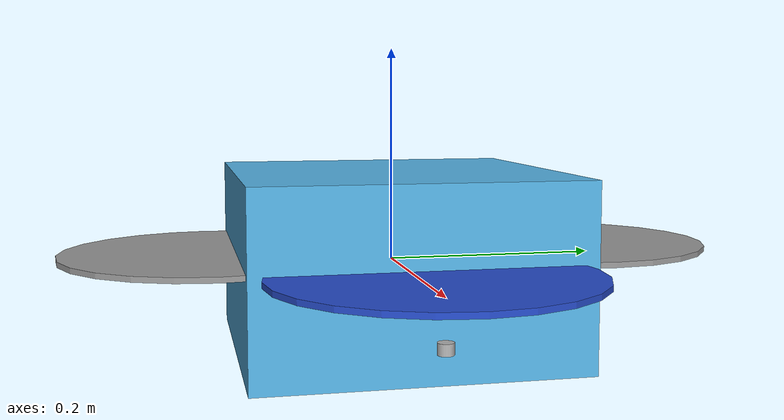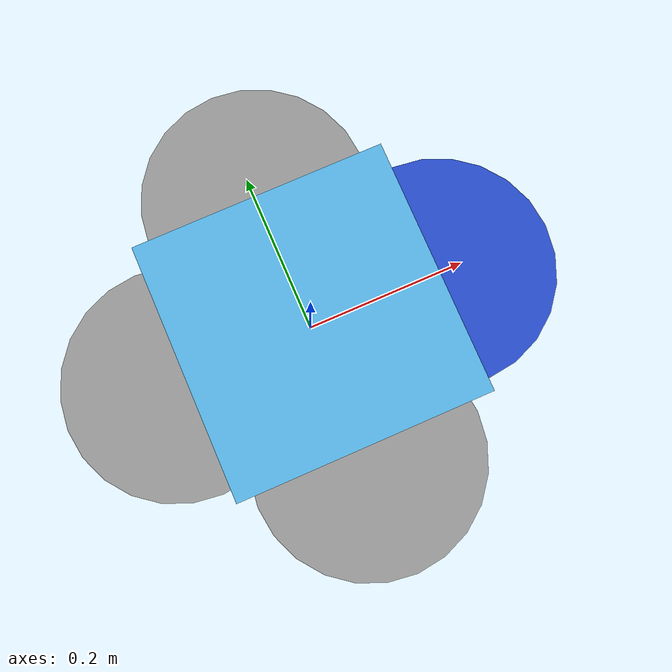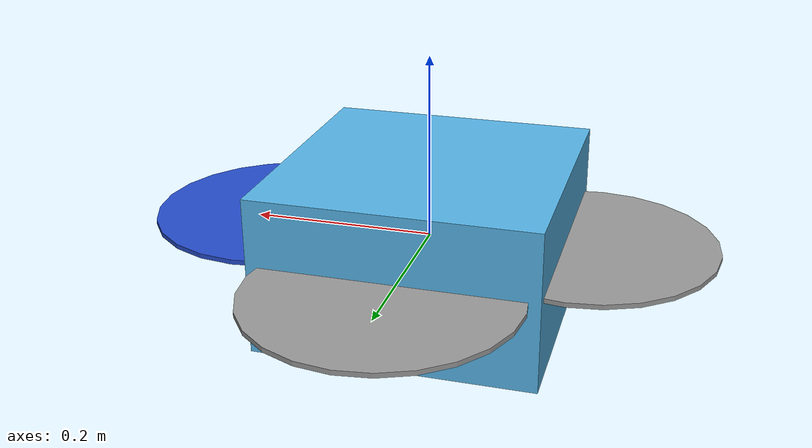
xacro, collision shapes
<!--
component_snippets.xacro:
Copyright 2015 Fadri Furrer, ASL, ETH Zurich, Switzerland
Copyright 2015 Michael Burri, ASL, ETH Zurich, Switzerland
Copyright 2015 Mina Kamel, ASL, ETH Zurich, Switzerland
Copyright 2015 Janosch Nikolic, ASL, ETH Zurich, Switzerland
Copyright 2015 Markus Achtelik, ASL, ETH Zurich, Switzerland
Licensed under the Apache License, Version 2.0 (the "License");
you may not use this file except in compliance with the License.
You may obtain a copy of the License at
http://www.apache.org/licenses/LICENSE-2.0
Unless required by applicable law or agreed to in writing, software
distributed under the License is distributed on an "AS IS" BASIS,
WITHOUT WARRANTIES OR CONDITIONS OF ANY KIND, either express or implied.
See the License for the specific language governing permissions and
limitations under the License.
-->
<?xml version="1.0"?>

<robot name="quad" xmlns:xacro="http://ros.org/wiki/xacro">
  <xacro:include filename="$(find acl_sim)/urdf/component_snippets.xacro" />

  <!-- Instantiate frame "mechanics" -->
  <xacro:include filename="$(find acl_sim)/urdf/kit_c.xacro" />

  <!-- Instantiate a controller. -->
  <xacro:controller_plugin_macro
    namespace="${namespace}"
    imu_sub_topic="imu"
    >
  </xacro:controller_plugin_macro>

  <!-- Mount an ADIS16448 IMU. -->
  <xacro:imu_plugin_macro
    namespace="${namespace}"
    imu_suffix=""
    parent_link="base_link"
    imu_topic="imu"
    mass_imu_sensor="0.015"
    gyroscope_noise_density="0.0003394"
    gyroscopoe_random_walk="0.000038785"
    gyroscope_bias_correlation_time="1000.0"
    gyroscope_turn_on_bias_sigma="0.0087"
    accelerometer_noise_density="0.004"
    accelerometer_random_walk="0.006"
    accelerometer_bias_correlation_time="300.0"
    accelerometer_turn_on_bias_sigma="0.1960"
  >
    <inertia ixx="0.00001" ixy="0.0" ixz="0.0" iyy="0.00001" iyz="0.0" izz="0.00001" />
    <origin xyz="0 0 0" rpy="0 0 0" />
  </xacro:imu_plugin_macro>

<!--Mount a basic camera -->
  <xacro:if value="false">
    <xacro:camera_macro
      namespace="${namespace}"
      parent_link="base_link"
      camera_suffix=""
      frame_rate="30"
      horizontal_fov="2"
      image_width="1280"
      image_height="720"
      image_format="R8G8B8"
      min_distance="0.02"
      max_distance="300"
      noise_mean="0.0"
      noise_stddev="0.007"
      enable_visual="true"
    >
      <box size="0.2 0.2 0.2" />
      <origin xyz="0.035 -0.035 0.028" rpy="0 0 0" />
    </xacro:camera_macro>
  </xacro:if>

<!--Mount a VI sensor (Kinect) -->
  <xacro:if value="true">
    <xacro:vi_sensor_depth_macro
      namespace="${namespace}"
      parent_link="base_link"
      camera_suffix=""
      frame_rate="30"
    >
      <origin xyz="0.2 0.0 -0.04" rpy="0 0 0" />
    </xacro:vi_sensor_depth_macro>
  </xacro:if>

  <xacro:if value="true">
    <!-- Mount an IMU providing ground truth. -->
    <xacro:imu_plugin_macro
      namespace="${namespace}"
      imu_suffix="gt"
      parent_link="base_link"
      imu_topic="ground_truth/imu"
      mass_imu_sensor="0.00001"
      gyroscope_noise_density="0.0"
      gyroscopoe_random_walk="0.0"
      gyroscope_bias_correlation_time="1000.0"
      gyroscope_turn_on_bias_sigma="0.0"
      accelerometer_noise_density="0.0"
      accelerometer_random_walk="0.0"
      accelerometer_bias_correlation_time="300.0"
      accelerometer_turn_on_bias_sigma="0.0"
    >
      <inertia ixx="0.00001" ixy="0.0" ixz="0.0" iyy="0.00001" iyz="0.0" izz="0.00001" />
      <origin xyz="0 0 0" rpy="0 0 0" />
    </xacro:imu_plugin_macro>

    <!-- Mount a generic odometry sensor providing ground truth. -->
    <xacro:odometry_plugin_macro
      namespace="${namespace}/ground_truth"
      odometry_sensor_suffix="gt"
      parent_link="base_link"
      pose_topic="pose"
      pose_with_covariance_topic="pose_with_covariance"
      position_topic="position"
      transform_topic="transform"
      odometry_topic="odometry"
      parent_frame_id="world"
      mass_odometry_sensor="0.00001"
      measurement_divisor="1"
      measurement_delay="0"
      unknown_delay="0.0"
      noise_normal_position="0 0 0"
      noise_normal_quaternion="0 0 0"
      noise_normal_linear_velocity="0 0 0"
      noise_normal_angular_velocity="0 0 0"
      noise_uniform_position="0 0 0"
      noise_uniform_quaternion="0 0 0"
      noise_uniform_linear_velocity="0 0 0"
      noise_uniform_angular_velocity="0 0 0"
      enable_odometry_map="false"
      odometry_map=""
      image_scale=""
    >
      <inertia ixx="0.00001" ixy="0.0" ixz="0.0" iyy="0.00001" iyz="0.0" izz="0.00001" /> <!-- [kg.m^2] [kg.m^2] [kg.m^2] [kg.m^2] [kg.m^2] [kg.m^2] -->
      <origin xyz="0.0 0.0 0.0" rpy="0.0 0.0 0.0" />
    </xacro:odometry_plugin_macro>
  </xacro:if>

</robot>

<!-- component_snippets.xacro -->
<robot xmlns:xacro="http://ros.org/wiki/xacro">
<xacro:property name="PI" value="3.1415926535897931" />

  <!-- Macro to add logging to a bag file. -->
  <xacro:macro name="bag_plugin_macro"
    params="namespace bag_file rotor_velocity_slowdown_sim">
    <gazebo>
      <plugin filename="librotors_gazebo_bag_plugin.so" name="rosbag">
        <robotNamespace>${namespace}</robotNamespace>
        <bagFileName>${bag_file}</bagFileName>
        <linkName>base_link</linkName>
        <frameId>base_link</frameId>
        <commandAttitudeThrustSubTopic>command/attitude</commandAttitudeThrustSubTopic>
        <commandAttitudeThrustPubTopic>command/attitude</commandAttitudeThrustPubTopic>
        <rotorVelocitySlowdownSim>${rotor_velocity_slowdown_sim}</rotorVelocitySlowdownSim>
      </plugin>
    </gazebo>
  </xacro:macro>

  <!-- Macro to add a camera. -->
  <xacro:macro name="camera_macro"
    params="namespace parent_link camera_suffix frame_rate
      horizontal_fov image_width image_height image_format min_distance
      max_distance noise_mean noise_stddev enable_visual *geometry *origin">
    <link name="${namespace}/camera_${camera_suffix}_link">
      <collision>
        <origin xyz="0 0 0" rpy="0 0 0" />
        <geometry>
          <xacro:insert_block name="geometry" />
        </geometry>
      </collision>
      <xacro:if value="${enable_visual}">
        <visual>
          <origin xyz="0 0 0" rpy="0 0 0" />
          <geometry>
            <mesh filename="package://acl_sim/meshes/wilSelby/thermaleye_camera_hector_v2.dae" scale=".5 .5 .5"/>
          </geometry>
        </visual>
      </xacro:if>
      <inertial>
        <mass value="1e-5" />
        <origin xyz="0 0 0" rpy="0 0 0" />
        <inertia ixx="1e-6" ixy="0" ixz="0" iyy="1e-6" iyz="0" izz="1e-6" />
      </inertial>
    </link>
    <joint name="${namespace}/camera_${camera_suffix}_joint" type="fixed">
      <xacro:insert_block name="origin" />
      <parent link="${parent_link}" />
      <child link="${namespace}/camera_${camera_suffix}_link" />
    </joint>
    <gazebo reference="${namespace}/camera_${camera_suffix}_link">
      <sensor type="camera" name="${namespace}_camera_${camera_suffix}">
        <update_rate>${frame_rate}</update_rate>
        <camera name="head">
          <horizontal_fov>${horizontal_fov}</horizontal_fov>
          <image>
            <width>${image_width}</width>
            <height>${image_height}</height>
            <format>${image_format}</format>
          </image>
          <clip>
            <near>${min_distance}</near>
            <far>${max_distance}</far>
          </clip>
          <noise>
            <type>gaussian</type>
            <!-- Noise is sampled independently per pixel on each frame.
                 That pixel's noise value is added to each of its color
                 channels, which at that point lie in the range [0,1]. -->
            <mean>${noise_mean}</mean>
            <stddev>${noise_stddev}</stddev>
          </noise>
        </camera>
        <plugin name="${namespace}_camera_${camera_suffix}_controller" filename="libgazebo_ros_camera.so">
          <robotNamespace>${namespace}</robotNamespace>
          <alwaysOn>true</alwaysOn>
          <updateRate>${frame_rate}</updateRate>
          <cameraName>camera_${camera_suffix}</cameraName>
          <imageTopicName>image_raw</imageTopicName>
          <cameraInfoTopicName>camera_info</cameraInfoTopicName>
          <frameName>camera_${camera_suffix}_link</frameName>
          <hackBaseline>0.0</hackBaseline>
          <distortionK1>0.0</distortionK1>
          <distortionK2>0.0</distortionK2>
          <distortionK3>0.0</distortionK3>
          <distortionT1>0.0</distortionT1>
          <distortionT2>0.0</distortionT2>
        </plugin>
      </sensor>
    </gazebo>
  </xacro:macro>

  <!-- Macro to add the controller interface. -->
  <xacro:macro name="controller_plugin_macro" params="namespace imu_sub_topic">
    <gazebo>
      <plugin name="controller_interface" filename="librotors_gazebo_controller_interface.so">
        <robotNamespace>${namespace}</robotNamespace>
        <commandAttitudeThrustSubTopic>command/attitude</commandAttitudeThrustSubTopic>
        <commandRateThrustSubTopic>command/rate</commandRateThrustSubTopic>
        <commandMotorSpeedSubTopic>command/motor_speed</commandMotorSpeedSubTopic>
        <imuSubTopic>${imu_sub_topic}</imuSubTopic>
        <motorSpeedCommandPubTopic>gazebo/command/motor_speed</motorSpeedCommandPubTopic>
      </plugin>
    </gazebo>
  </xacro:macro>

  <!-- Macro to add an IMU. -->
  <xacro:macro name="imu_plugin_macro"
    params="namespace imu_suffix parent_link imu_topic
      mass_imu_sensor gyroscope_noise_density gyroscopoe_random_walk
      gyroscope_bias_correlation_time gyroscope_turn_on_bias_sigma
      accelerometer_noise_density accelerometer_random_walk
      accelerometer_bias_correlation_time accelerometer_turn_on_bias_sigma
      *inertia *origin">
    <!-- IMU link -->
    <link name="${namespace}/imu${imu_suffix}_link">
      <inertial>
        <xacro:insert_block name="inertia" />
        <mass value="${mass_imu_sensor}" />  <!-- [kg] -->
        <origin xyz="0 0 0" rpy="0 0 0" />
      </inertial>
    </link>
    <!-- IMU joint -->
    <joint name="${namespace}/imu${imu_suffix}_joint" type="revolute">
      <xacro:insert_block name="origin" />
      <parent link="${parent_link}" />
      <child link="${namespace}/imu${imu_suffix}_link" />
      <limit upper="0" lower="0" effort="0" velocity="0" />
    </joint>
    <gazebo>
      <plugin filename="librotors_gazebo_imu_plugin.so" name="rotors_gazebo_imu${imu_suffix}_plugin">
      <!-- A good description of the IMU parameters can be found in the kalibr documentation:
           https://github.com/ethz-asl/kalibr/wiki/IMU-Noise-Model-and-Intrinsics -->
        <robotNamespace>${namespace}</robotNamespace> <!-- (string, required): ros namespace in which the messages are published -->
        <linkName>${namespace}/imu${imu_suffix}_link</linkName> <!-- (string, required): name of the body which holds the IMU sensor -->
        <imuTopic>${imu_topic}</imuTopic> <!-- (string): name of the sensor output topic and prefix of service names (defaults to imu) -->
        <gyroscopeNoiseDensity>${gyroscope_noise_density}</gyroscopeNoiseDensity> <!-- Gyroscope noise density (two-sided spectrum) [rad/s/sqrt(Hz)] -->
        <gyroscopeRandomWalk>${gyroscopoe_random_walk}</gyroscopeRandomWalk> <!-- Gyroscope bias random walk [rad/s/s/sqrt(Hz)] -->
        <gyroscopeBiasCorrelationTime>${gyroscope_bias_correlation_time}</gyroscopeBiasCorrelationTime> <!-- Gyroscope bias correlation time constant [s] -->
        <gyroscopeTurnOnBiasSigma>${gyroscope_turn_on_bias_sigma}</gyroscopeTurnOnBiasSigma> <!-- Gyroscope turn on bias standard deviation [rad/s] -->
        <accelerometerNoiseDensity>${accelerometer_noise_density}</accelerometerNoiseDensity> <!-- Accelerometer noise density (two-sided spectrum) [m/s^2/sqrt(Hz)] -->
        <accelerometerRandomWalk>${accelerometer_random_walk}</accelerometerRandomWalk> <!-- Accelerometer bias random walk. [m/s^2/s/sqrt(Hz)] -->
        <accelerometerBiasCorrelationTime>${accelerometer_bias_correlation_time}</accelerometerBiasCorrelationTime> <!-- Accelerometer bias correlation time constant [s] -->
        <accelerometerTurnOnBiasSigma>${accelerometer_turn_on_bias_sigma}</accelerometerTurnOnBiasSigma> <!-- Accelerometer turn on bias standard deviation [m/s^2] -->
      </plugin>
    </gazebo>
  </xacro:macro>

<!-- Macro to add a generic odometry sensor. -->
  <xacro:macro name="odometry_plugin_macro"
    params="
      namespace odometry_sensor_suffix parent_link pose_topic pose_with_covariance_topic
      position_topic transform_topic odometry_topic parent_frame_id
      mass_odometry_sensor measurement_divisor measurement_delay unknown_delay
      noise_normal_position noise_normal_quaternion noise_normal_linear_velocity
      noise_normal_angular_velocity noise_uniform_position
      noise_uniform_quaternion noise_uniform_linear_velocity
      noise_uniform_angular_velocity enable_odometry_map odometry_map
      image_scale *inertia *origin">
    <!-- odometry link -->
    <link name="${namespace}/odometry_sensor${odometry_sensor_suffix}_link">
      <inertial>
        <xacro:insert_block name="inertia" />
        <mass value="${mass_odometry_sensor}" />  <!-- [kg] -->
      </inertial>
    </link>
    <!-- odometry joint -->
    <joint name="${namespace}/odometry_sensor${odometry_sensor_suffix}_joint" type="revolute">
      <parent link="${parent_link}" />
      <xacro:insert_block name="origin" />
      <child link="${namespace}/odometry_sensor${odometry_sensor_suffix}_link" />
      <limit upper="0" lower="0" effort="0" velocity="0" />
    </joint>
    <gazebo>
      <plugin filename="librotors_gazebo_odometry_plugin.so" name="odometry_sensor${odometry_sensor_suffix}">
        <linkName>base_link</linkName>  <!--{namespace}/odometry_sensor${odometry_sensor_suffix}_link"-->
        <robotNamespace>${namespace}</robotNamespace>
        <poseTopic>${pose_topic}</poseTopic>
        <poseWithCovarianceTopic>${pose_with_covariance_topic}</poseWithCovarianceTopic>
        <positionTopic>${position_topic}</positionTopic>
        <transformTopic>${transform_topic}</transformTopic>
        <odometryTopic>${odometry_topic}</odometryTopic>
        <parentFrameId>${parent_frame_id}</parentFrameId>  <!-- Use the scoped link name here. e.g. Model::link. -->
        <measurementDivisor>${measurement_divisor}</measurementDivisor> <!-- only every (seq % measurementDivisor) == 0 measurement is published [int] -->
        <measurementDelay>${measurement_delay}</measurementDelay> <!-- time that measurement gets held back before it's published in [simulation cycles (int)] -->
        <unknownDelay>${unknown_delay}</unknownDelay> <!-- additional delay, that just gets added to the timestamp [s] -->
        <noiseNormalPosition>${noise_normal_position}</noiseNormalPosition> <!-- standard deviation of additive white gaussian noise [m] -->
        <noiseNormalQuaternion>${noise_normal_quaternion}</noiseNormalQuaternion> <!-- standard deviation white gaussian noise [rad]: q_m = q*quaternionFromSmallAngleApproximation(noiseNormalQ) -->
        <noiseNormalLinearVelocity>${noise_normal_linear_velocity}</noiseNormalLinearVelocity> <!-- standard deviation of additive white gaussian noise [m/s] -->
        <noiseNormalAngularVelocity>${noise_normal_angular_velocity}</noiseNormalAngularVelocity> <!-- standard deviation of additive white gaussian noise [rad/s] -->
        <noiseUniformPosition>${noise_uniform_position}</noiseUniformPosition> <!-- symmetric bounds of uniform noise [m] -->
        <noiseUniformQuaternion>${noise_uniform_quaternion}</noiseUniformQuaternion> <!-- symmetric bounds of uniform noise [rad], computation see above -->
        <noiseUniformLinearVelocity>${noise_uniform_linear_velocity}</noiseUniformLinearVelocity>  <!-- symmetric bounds of uniform noise [m/s] -->
        <noiseUniformAngularVelocity>${noise_uniform_angular_velocity}</noiseUniformAngularVelocity>  <!-- symmetric bounds of uniform noise [rad/s] -->
        <xacro:if value="${enable_odometry_map}">
          <covarianceImage>package://rotors_gazebo/resource/${odometry_map}</covarianceImage>
          <covarianceImageScale>${image_scale}</covarianceImageScale>
        </xacro:if>
      </plugin>
    </gazebo>
  </xacro:macro>

  <!-- Macro to add the wind plugin. -->
  <xacro:macro name="wind_plugin_macro"
    params="namespace xyz_offset wind_direction wind_force_mean
      wind_gust_direction wind_gust_duration wind_gust_start
      wind_gust_force_mean">
    <gazebo>
      <plugin filename="librotors_gazebo_wind_plugin.so" name="wind_plugin">
        <frameId>base_link</frameId>
        <linkName>base_link</linkName>
        <robotNamespace>${namespace}</robotNamespace>
        <xyzOffset>${xyz_offset}</xyzOffset>
        <windDirection>${wind_direction}</windDirection>
        <windForceMean>${wind_force_mean}</windForceMean>
        <windGustDirection>${wind_gust_direction}</windGustDirection>
        <windGustDuration>${wind_gust_duration}</windGustDuration>
        <windGustStart>${wind_gust_start}</windGustStart>
        <windGustForceMean>${wind_gust_force_mean}</windGustForceMean>
      </plugin>
    </gazebo>
  </xacro:macro>

  <!-- VI sensor macros -->
  <!-- Macro to add a VI-sensor camera. -->
  <xacro:macro name="vi_sensor_camera_macro"
    params="namespace parent_link camera_suffix frame_rate *origin">
    <xacro:camera_macro
      namespace="${namespace}"
      parent_link="${parent_link}"
      camera_suffix="${camera_suffix}"
      frame_rate="${frame_rate}"
      horizontal_fov="1.3962634"
      image_width="752"
      image_height="480"
      image_format="L8"
      min_distance="0.02"
      max_distance="30"
      noise_mean="0.0"
      noise_stddev="0.007"
      enable_visual="false">
      <cylinder length="0.01" radius="0.007" />
      <xacro:insert_block name="origin" />
    </xacro:camera_macro>
  </xacro:macro>

  <!-- Macro to add a depth camera on the VI-sensor. -->
  <xacro:macro name="vi_sensor_depth_macro"
    params="namespace parent_link camera_suffix frame_rate *origin">
    <link name="${namespace}/camera_${camera_suffix}_link">
      <visual>
        <origin xyz="0 0 0" rpy="0 0 0" />
        <geometry>
          <mesh filename="package://acl_sim/meshes/wilSelby/kinect_camera_simple.dae"/>
        </geometry>
      </visual>
      <collision>
        <origin xyz="0 0 0" rpy="0 0 0" />
        <geometry>
          <cylinder length="0.01" radius="0.007" />
          <mesh filename="package://acl_sim/meshes/wilSelby/kinect_camera_simple.stl"/>
        </geometry>
      </collision>
      <inertial>
        <mass value="1e-5" />
        <origin xyz="0 0 0" rpy="0 0 0" />
        <inertia ixx="1e-6" ixy="0" ixz="0" iyy="1e-6" iyz="0" izz="1e-6" />
      </inertial>
    </link>
    <joint name="${namespace}/camera_${camera_suffix}_joint" type="fixed">
      <xacro:insert_block name="origin" />
      <parent link="${parent_link}" />
      <child link="${namespace}/camera_${camera_suffix}_link" />
      <limit upper="0" lower="0" effort="0" velocity="0" />
    </joint>
    <!-- Optical center of camera -->
    <link name="${namespace}/camera_${camera_suffix}_optical_center_link" />
    <joint name="${namespace}/camera_${camera_suffix}_optical_center_joint" type="fixed">
      <origin xyz="0 0 0" rpy="${-PI/2} 0 ${-PI/2}" />
      <parent link="${namespace}/camera_${camera_suffix}_link" />
      <child link="${namespace}/camera_${camera_suffix}_optical_center_link" />
      <limit upper="0" lower="0" effort="0" velocity="0" />
    </joint>
    <gazebo reference="${namespace}/camera_${camera_suffix}_link">
      <sensor type="depth" name="${namespace}_camera_{camera_suffix}">
        <always_on>true</always_on>
        <update_rate>${frame_rate}</update_rate>
        <camera>
          <horizontal_fov>2</horizontal_fov>
          <image>
            <format>R8G8B8</format>
            <width>640</width>
            <height>480</height>
          </image>
          <clip>
            <near>0.01</near>
            <far>100</far>
          </clip>
        </camera>
        <plugin name="${namespace}_camera_{camera_suffix}" filename="libgazebo_ros_openni_kinect.so">
          <robotNamespace>${namespace}</robotNamespace>
          <alwaysOn>true</alwaysOn>
          <baseline>0.11</baseline>
          <updateRate>${frame_rate}</updateRate>
          <cameraName>camera_${camera_suffix}</cameraName>
          <imageTopicName>camera/image_raw</imageTopicName>
          <cameraInfoTopicName>camera/camera_info</cameraInfoTopicName>
          <depthImageTopicName>depth/disparity</depthImageTopicName>
          <depthImageCameraInfoTopicName>depth/camera_info</depthImageCameraInfoTopicName>
          <pointCloudTopicName>depth/points</pointCloudTopicName>
          <frameName>camera_${camera_suffix}_optical_center_link</frameName>
          <pointCloudCutoff>0.5</pointCloudCutoff>
          <distortionK1>0.0</distortionK1>
          <distortionK2>0.0</distortionK2>
          <distortionK3>0.0</distortionK3>
          <distortionT1>0.0</distortionT1>
          <distortionT2>0.0</distortionT2>
        </plugin>
      </sensor>
    </gazebo>
  </xacro:macro>

  <!-- VI-Sensor Macro -->
  <xacro:macro name="vi_sensor_macro" params="namespace parent_link *origin">
    <!-- Vi Sensor Link -->
    <link name="${namespace}/vi_sensor_link">
      <collision>
        <origin xyz="0 0 0" rpy="0 0 0" />
        <geometry>
          <box size="0.03 0.133 0.057" />
        </geometry>
      </collision>

      <visual>
        <origin xyz="0 0 0" rpy="0 0 0" />
        <geometry>
          <mesh filename="package://rotors_description/meshes/vi_sensor.dae" scale="1 1 1" />
        </geometry>
      </visual>

      <inertial>
        <mass value="0.13" />
        <origin xyz="0 0 0" rpy="0 0 0" />
        <inertia ixx="1e-6" ixy="0" ixz="0" iyy="1e-6" iyz="0" izz="1e-6" />
      </inertial>
    </link>
    <joint name="{namespace}_vi_sensor_joint" type="fixed">
      <xacro:insert_block name="origin" />
      <parent link="${parent_link}" />
      <child link="${namespace}/vi_sensor_link" />
    </joint>
    <!-- Cameras -->
    <xacro:if value="$(arg enable_cameras)">
      <!-- Left Camera -->
      <xacro:vi_sensor_camera_macro
        namespace="${namespace}" parent_link="${namespace}/vi_sensor_link"
        camera_suffix="left" frame_rate="30.0">
        <origin xyz="0.015 0.055 0.0065" rpy="0 0 0" />
      </xacro:vi_sensor_camera_macro>
      <!-- Right Camera -->
      <xacro:vi_sensor_camera_macro namespace="${namespace}"
        parent_link="${namespace}/vi_sensor_link"
        camera_suffix="right" frame_rate="30.0">
        <origin xyz="0.015 -0.055 0.0065" rpy="0 0 0" />
      </xacro:vi_sensor_camera_macro>
    </xacro:if>

    <!-- Depth Sensor -->
    <xacro:if value="$(arg enable_depth)">
      <xacro:vi_sensor_depth_macro
        namespace="${namespace}" parent_link="${namespace}/vi_sensor_link"
        camera_suffix="depth" frame_rate="30.0">
        <origin xyz="0.015 0.055 0.0065" rpy="0 0 0" />
      </xacro:vi_sensor_depth_macro>
    </xacro:if>

    <!-- Groundtruth -->
    <xacro:if value="$(arg enable_ground_truth)">
      <!-- Odometry Sensor -->
      <xacro:odometry_plugin_macro
        namespace="${namespace}/ground_truth"
        odometry_sensor_suffix=""
        parent_link="${namespace}/vi_sensor_link"
        pose_topic="pose"
        pose_with_covariance_topic="pose_with_covariance"
        position_topic="position"
        transform_topic="transform"
        odometry_topic="odometry"
        parent_frame_id="world"
        mass_odometry_sensor="0.00001"
        measurement_divisor="1"
        measurement_delay="0"
        unknown_delay="0.0"
        noise_normal_position="0 0 0"
        noise_normal_quaternion="0 0 0"
        noise_normal_linear_velocity="0 0 0"
        noise_normal_angular_velocity="0 0 0"
        noise_uniform_position="0 0 0"
        noise_uniform_quaternion="0 0 0"
        noise_uniform_linear_velocity="0 0 0"
        noise_uniform_angular_velocity="0 0 0"
        enable_odometry_map="false"
        odometry_map=""
        image_scale="">
        <inertia ixx="0.00001" ixy="0.0" ixz="0.0" iyy="0.00001" iyz="0.0" izz="0.00001" /> <!-- [kg.m^2] [kg.m^2] [kg.m^2] [kg.m^2] [kg.m^2] [kg.m^2] -->
        <origin xyz="0.0 0.0 0.0" rpy="0.0 0.0 0.0" />
      </xacro:odometry_plugin_macro>
    </xacro:if>

    <!-- ADIS16448 IMU. -->
    <xacro:imu_plugin_macro
      namespace="${namespace}"
      imu_suffix=""
      parent_link="${namespace}/vi_sensor_link"
      imu_topic="imu"
      mass_imu_sensor="0.015"
      gyroscope_noise_density="0.0003394"
      gyroscopoe_random_walk="0.000038785"
      gyroscope_bias_correlation_time="1000.0"
      gyroscope_turn_on_bias_sigma="0.0087"
      accelerometer_noise_density="0.004"
      accelerometer_random_walk="0.006"
      accelerometer_bias_correlation_time="300.0"
      accelerometer_turn_on_bias_sigma="0.1960">
      <inertia ixx="0.00001" ixy="0.0" ixz="0.0" iyy="0.00001" iyz="0.0" izz="0.00001" />
      <origin xyz="0.015 0 0.0113" rpy="0 0 0" />
    </xacro:imu_plugin_macro>
  </xacro:macro>

</robot>

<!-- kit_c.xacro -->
<robot name="quad" xmlns:xacro="http://ros.org/wiki/xacro">
  <!-- Properties -->
  <xacro:property name="namespace" value="quad" />
  <xacro:property name="rotor_velocity_slowdown_sim" value="10" />
  <xacro:property name="mesh_file" value="hummingbird.dae" />
  <xacro:property name="mesh_scale" value="1 1 1"/>
  <xacro:property name="mesh" value="propeller"/>  <!-- "propeller" -->
  <xacro:property name="mesh_scale_prop" value=".12 .12 .12"/>
  <xacro:property name="mass" value="1.40" /> <!-- [kg] -->
  <xacro:property name="body_width" value="0.3" />
  <xacro:property name="body_height" value="0.17" />
  <xacro:property name="mass_rotor" value="0.005" /> <!-- [kg] -->
  <xacro:property name="arm_length" value="0.17" />
  <xacro:property name="rotor_offset_top" value="0.01" />
  <xacro:property name="radius_rotor" value="0.14" />
  <xacro:property name="motor_constant" value="2.39e-05" /> <!-- [kg.m/s^2] -->
  <xacro:property name="moment_constant" value="0.016" />
  <xacro:property name="time_constant_up" value="0.15" />
  <xacro:property name="time_constant_down" value="0.15" />
  <xacro:property name="max_rot_velocity" value="770" /> <!-- [rad/s] -->
  <xacro:property name="rotor_drag_coefficient" value="1.3858e-06" />
  <xacro:property name="rolling_moment_coefficient" value="0.000001" />
  <xacro:property name="color" value="DarkGrey" />

  <!-- Property Blocks -->
  <xacro:property name="body_inertia">
    <inertia ixx="0.05" ixy="0.0" ixz="0.0" iyy="0.05" iyz="0.0" izz="0.24" /> <!-- [kg.m^2] [kg.m^2] [kg.m^2] [kg.m^2] [kg.m^2] [kg.m^2] -->
  </xacro:property>

  <!-- inertia of a single rotor, assuming it is a cuboid. Height=3mm, width=15mm -->
  <xacro:property name="rotor_inertia">
    <inertia
    ixx="${1/12 * mass_rotor * (0.015 * 0.015 + 0.003 * 0.003) * rotor_velocity_slowdown_sim}"
    iyy="${1/12 * mass_rotor * (4 * radius_rotor * radius_rotor + 0.003 * 0.003) * rotor_velocity_slowdown_sim}"
    izz="${1/12 * mass_rotor * (4 * radius_rotor * radius_rotor + 0.015 * 0.015) * rotor_velocity_slowdown_sim}"
    ixy="0.0" ixz="0.0"  iyz="0.0" /> <!-- [kg.m^2] [kg.m^2] [kg.m^2] [kg.m^2] [kg.m^2] [kg.m^2] -->
  </xacro:property>

  <!-- Included URDF Files -->
  <xacro:include filename="$(find acl_sim)/urdf/multirotor_base.xacro" />

  <!-- Instantiate multirotor_base_macro once -->
  <xacro:multirotor_base_macro
    robot_namespace="${namespace}"
    mass="${mass}"
    body_width="${body_width}"
    body_height="${body_height}"
    mesh_file="${mesh_file}"
    mesh_scale="${mesh_scale}"
    color="${color}">
    <xacro:insert_block name="body_inertia" />
  </xacro:multirotor_base_macro>

  <!-- Instantiate rotors -->
  <xacro:vertical_rotor
    robot_namespace="${namespace}"
    suffix="front"
    direction="ccw"
    motor_constant="${motor_constant}"
    moment_constant="${moment_constant}"
    parent="base_link"
    mass_rotor="${mass_rotor}"
    radius_rotor="${radius_rotor}"
    time_constant_up="${time_constant_up}"
    time_constant_down="${time_constant_down}"
    max_rot_velocity="${max_rot_velocity}"
    motor_number="0"
    rotor_drag_coefficient="${rotor_drag_coefficient}"
    rolling_moment_coefficient="${rolling_moment_coefficient}"
    mesh ="propeller"
    mesh_scale="${mesh_scale_prop}"
    color="Blue">
    <origin xyz="${arm_length} 0 ${rotor_offset_top}" rpy="0 0 0" />
    <xacro:insert_block name="rotor_inertia" />
  </xacro:vertical_rotor>

  <xacro:vertical_rotor
    robot_namespace="${namespace}"
    suffix="right"
    direction="cw"
    motor_constant="${motor_constant}"
    moment_constant="${moment_constant}"
    parent="base_link"
    mass_rotor="${mass_rotor}"
    radius_rotor="${radius_rotor}"
    time_constant_up="${time_constant_up}"
    time_constant_down="${time_constant_down}"
    max_rot_velocity="${max_rot_velocity}"
    motor_number="1"
    rotor_drag_coefficient="${rotor_drag_coefficient}"
    rolling_moment_coefficient="${rolling_moment_coefficient}"
    mesh ="propeller"
    mesh_scale="${mesh_scale_prop}"
    color="Grey">
    <origin xyz="0 -${arm_length} ${rotor_offset_top}" rpy="0 0 0" />
    <xacro:insert_block name="rotor_inertia" />
  </xacro:vertical_rotor>

  <xacro:vertical_rotor
    robot_namespace="${namespace}"
    suffix="back"
    direction="ccw"
    motor_constant="${motor_constant}"
    moment_constant="${moment_constant}"
    parent="base_link"
    mass_rotor="${mass_rotor}"
    radius_rotor="${radius_rotor}"
    time_constant_up="${time_constant_up}"
    time_constant_down="${time_constant_down}"
    max_rot_velocity="${max_rot_velocity}"
    motor_number="2"
    rotor_drag_coefficient="${rotor_drag_coefficient}"
    rolling_moment_coefficient="${rolling_moment_coefficient}"
    mesh ="propeller"
    mesh_scale="${mesh_scale_prop}"
    color="Grey">
    <origin xyz="-${arm_length} 0 ${rotor_offset_top}" rpy="0 0 0" />
    <xacro:insert_block name="rotor_inertia" />
  </xacro:vertical_rotor>

  <xacro:vertical_rotor
    robot_namespace="${namespace}"
    suffix="left"
    direction="cw"
    motor_constant="${motor_constant}"
    moment_constant="${moment_constant}"
    parent="base_link"
    mass_rotor="${mass_rotor}"
    radius_rotor="${radius_rotor}"
    time_constant_up="${time_constant_up}"
    time_constant_down="${time_constant_down}"
    max_rot_velocity="${max_rot_velocity}"
    motor_number="3"
    rotor_drag_coefficient="${rotor_drag_coefficient}"
    rolling_moment_coefficient="${rolling_moment_coefficient}"
    mesh ="propeller"
    mesh_scale="${mesh_scale_prop}"
    color="Grey">
    <origin xyz="0 ${arm_length} ${rotor_offset_top}" rpy="0 0 0" />
    <xacro:insert_block name="rotor_inertia" />
  </xacro:vertical_rotor>

</robot>

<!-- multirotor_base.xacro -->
<robot xmlns:xacro="http://ros.org/wiki/xacro">
  <!-- Main multirotor link -->
  <xacro:macro name="multirotor_base_macro"
    params="robot_namespace mass body_width body_height mesh_file mesh_scale color *inertia">

    <link name="base_link"></link>

    <joint name="base_joint" type="fixed">
      <origin xyz="0 0 0" rpy="0 0 0" />
      <parent link="base_link" />
      <child link="base_link_inertia" />
    </joint>

    <link name="base_link_inertia">
      <inertial>
        <mass value="${mass}" />  <!-- [kg] -->
        <origin xyz="0 0 0" />
        <xacro:insert_block name="inertia" />
      </inertial>

      <visual>
        <origin xyz="0 0 0" rpy="0 0 0" />
        <geometry>
          <mesh filename="package://acl_sim/meshes/wilSelby/${mesh_file}"
            scale="${mesh_scale}" />

        </geometry>
      </visual>

      <collision>
        <origin xyz="0 0 0" rpy="0 0 0" />
        <geometry>
          <box size="${body_width} ${body_width} ${body_height}" />
        </geometry>
      </collision>
    </link>

    <!-- attach multirotor_base_plugin to the base_link -->
    <gazebo>
      <plugin filename="librotors_gazebo_multirotor_base_plugin.so" name="rosbag">
        <robotNamespace>${robot_namespace}</robotNamespace>
        <linkName>base_link</linkName>
        <rotorVelocitySlowdownSim>${rotor_velocity_slowdown_sim}</rotorVelocitySlowdownSim>
      </plugin>
    </gazebo>

    <gazebo reference="base_link">
      <material>Gazebo/${color}</material>
    </gazebo>
  </xacro:macro>

  <!-- Rotor joint and link -->
  <xacro:macro name="vertical_rotor"
    params="robot_namespace suffix direction motor_constant moment_constant parent mass_rotor radius_rotor time_constant_up time_constant_down max_rot_velocity motor_number rotor_drag_coefficient rolling_moment_coefficient color mesh mesh_scale *origin *inertia">
    <joint name="rotor_${motor_number}_joint" type="continuous">
      <xacro:insert_block name="origin" />
      <axis xyz="0 0 1" />
      <!-- TODO(ff): not currently set because it's not yet supported -->
      <parent link="${parent}" />
      <child link="rotor_${motor_number}" />

    </joint>
    <!-- TODO(ff): not currently set because it's not yet supported -->
    <link name="rotor_${motor_number}">
      <inertial>
        <mass value="${mass_rotor}" /> <!-- [kg] -->
        <xacro:insert_block name="inertia" />
      </inertial>
      <visual>
        <geometry>

          <mesh filename="package://acl_sim/meshes/wilSelby/${mesh}_${direction}.dae"
            scale="${mesh_scale}" />
        </geometry>
      </visual>
      <collision>
        <geometry>
          <cylinder length="0.005" radius="${radius_rotor}" />
        </geometry>
      </collision>
    </link>
    <gazebo>
      <plugin name="${suffix}_motor_model" filename="librotors_gazebo_motor_model.so">
        <robotNamespace>${robot_namespace}</robotNamespace>
        <jointName>rotor_${motor_number}_joint</jointName>
        <linkName>rotor_${motor_number}</linkName>
        <turningDirection>${direction}</turningDirection>
        <timeConstantUp>${time_constant_up}</timeConstantUp>
        <timeConstantDown>${time_constant_down}</timeConstantDown>
        <maxRotVelocity>${max_rot_velocity}</maxRotVelocity>
        <motorConstant>${motor_constant}</motorConstant>
        <momentConstant>${moment_constant}</momentConstant>
        <commandSubTopic>gazebo/command/motor_speed</commandSubTopic>
        <motorNumber>${motor_number}</motorNumber>
        <rotorDragCoefficient>${rotor_drag_coefficient}</rotorDragCoefficient>
        <rollingMomentCoefficient>${rolling_moment_coefficient}</rollingMomentCoefficient>
        <motorSpeedPubTopic>motor_speed/${motor_number}</motorSpeedPubTopic>
        <rotorVelocitySlowdownSim>${rotor_velocity_slowdown_sim}</rotorVelocitySlowdownSim>
      </plugin>
    </gazebo>
    <gazebo reference="rotor_${motor_number}">
      <material>Gazebo/${color}</material>
    </gazebo>
  </xacro:macro>
</robot>
